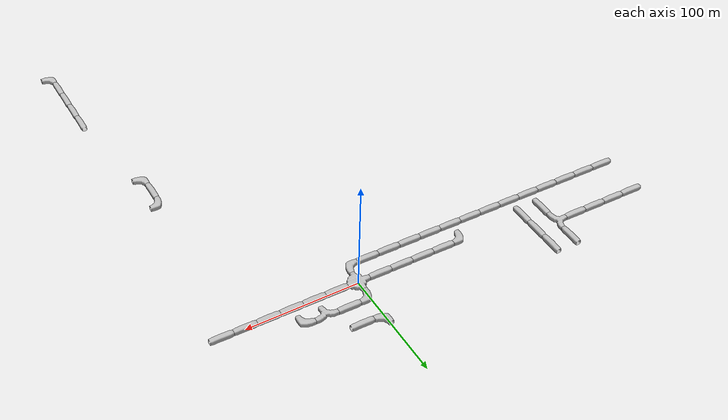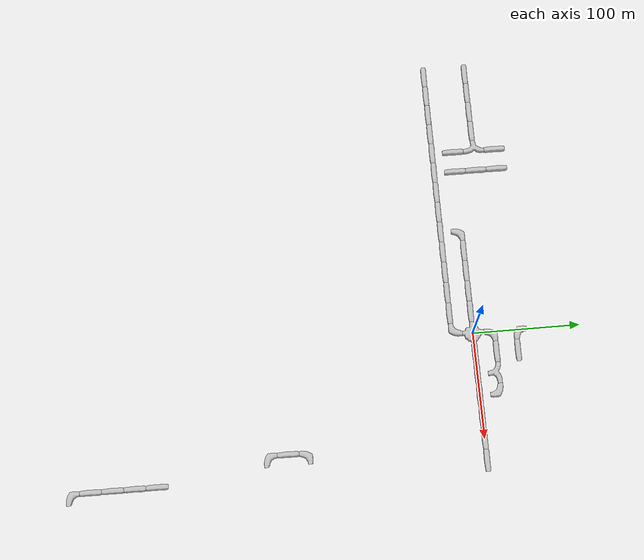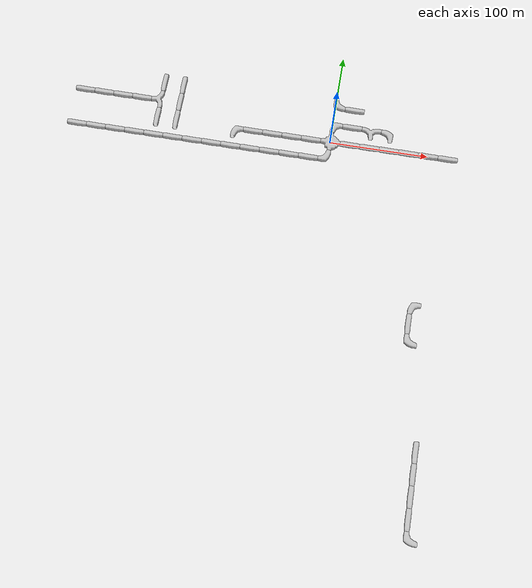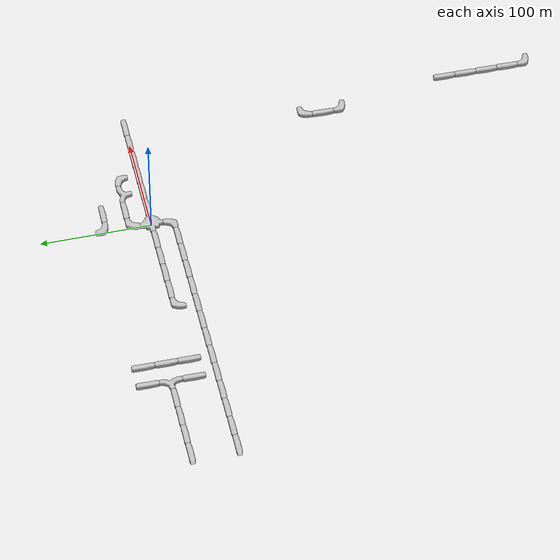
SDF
<sdf version="1.6">
 <world name="cave_8000_64">
  <include>
   <static>true</static>
   <name>cave_0_0</name>
   <pose>0 0 0 0 0 -1.5707963267948966</pose>
   <uri>model://cave_4way_20m</uri>
  </include>
  <include>
   <static>true</static>
   <name>cave_1_0</name>
   <pose>20 0 0 0 0 1.5707963267948966</pose>
   <uri>model://cave_straight_20m</uri>
  </include>
  <include>
   <static>true</static>
   <name>cave_2_0</name>
   <pose>40 0 0 0 0 1.5707963267948966</pose>
   <uri>model://cave_straight_20m</uri>
  </include>
  <include>
   <static>true</static>
   <name>cave_3_0</name>
   <pose>60 0 0 0 0 1.5707963267948966</pose>
   <uri>model://cave_straight_20m</uri>
  </include>
  <include>
   <static>true</static>
   <name>cave_4_0</name>
   <pose>80 0 0 0 0 1.5707963267948966</pose>
   <uri>model://cave_straight_20m</uri>
  </include>
  <include>
   <static>true</static>
   <name>cave_5_0</name>
   <pose>100 0 0 0 0 1.5707963267948966</pose>
   <uri>model://cave_straight_20m</uri>
  </include>
  <include>
   <static>true</static>
   <name>cave_6_0</name>
   <pose>120 0 0 0 0 1.5707963267948966</pose>
   <uri>model://cave_straight_20m</uri>
  </include>
  <include>
   <static>true</static>
   <name>cave_6_-19</name>
   <pose>120 -380 0 0 0 0.0</pose>
   <uri>model://cave_L_20m</uri>
  </include>
  <include>
   <static>true</static>
   <name>cave_6_-18</name>
   <pose>120 -360 0 0 0 0.0</pose>
   <uri>model://cave_straight_20m</uri>
  </include>
  <include>
   <static>true</static>
   <name>cave_6_-17</name>
   <pose>120 -340 0 0 0 0.0</pose>
   <uri>model://cave_straight_20m</uri>
  </include>
  <include>
   <static>true</static>
   <name>cave_6_-16</name>
   <pose>120 -320 0 0 0 0.0</pose>
   <uri>model://cave_straight_20m</uri>
  </include>
  <include>
   <static>true</static>
   <name>cave_6_-15</name>
   <pose>120 -300 0 0 0 0.0</pose>
   <uri>model://cave_straight_20m</uri>
  </include>
  <include>
   <static>true</static>
   <name>cave_5_-8</name>
   <pose>100 -160 0 0 0 -1.5707963267948966</pose>
   <uri>model://cave_L_20m</uri>
  </include>
  <include>
   <static>true</static>
   <name>cave_5_-9</name>
   <pose>100 -180 0 0 0 0.0</pose>
   <uri>model://cave_straight_20m</uri>
  </include>
  <include>
   <static>true</static>
   <name>cave_5_-10</name>
   <pose>100 -200 0 0 0 0.0</pose>
   <uri>model://cave_L_20m</uri>
  </include>
  <include>
   <static>true</static>
   <name>cave_0_-1</name>
   <pose>0 -20 0 0 0 1.5707963267948966</pose>
   <uri>model://cave_L_20m</uri>
  </include>
  <include>
   <static>true</static>
   <name>cave_-1_-1</name>
   <pose>-20 -20 0 0 0 1.5707963267948966</pose>
   <uri>model://cave_straight_20m</uri>
  </include>
  <include>
   <static>true</static>
   <name>cave_-2_-1</name>
   <pose>-40 -20 0 0 0 1.5707963267948966</pose>
   <uri>model://cave_straight_20m</uri>
  </include>
  <include>
   <static>true</static>
   <name>cave_-3_-1</name>
   <pose>-60 -20 0 0 0 1.5707963267948966</pose>
   <uri>model://cave_straight_20m</uri>
  </include>
  <include>
   <static>true</static>
   <name>cave_-4_-1</name>
   <pose>-80 -20 0 0 0 1.5707963267948966</pose>
   <uri>model://cave_straight_20m</uri>
  </include>
  <include>
   <static>true</static>
   <name>cave_-5_-1</name>
   <pose>-100 -20 0 0 0 1.5707963267948966</pose>
   <uri>model://cave_straight_20m</uri>
  </include>
  <include>
   <static>true</static>
   <name>cave_-6_-1</name>
   <pose>-120 -20 0 0 0 1.5707963267948966</pose>
   <uri>model://cave_straight_20m</uri>
  </include>
  <include>
   <static>true</static>
   <name>cave_-7_-1</name>
   <pose>-140 -20 0 0 0 1.5707963267948966</pose>
   <uri>model://cave_straight_20m</uri>
  </include>
  <include>
   <static>true</static>
   <name>cave_-8_-1</name>
   <pose>-160 -20 0 0 0 1.5707963267948966</pose>
   <uri>model://cave_straight_20m</uri>
  </include>
  <include>
   <static>true</static>
   <name>cave_-9_-1</name>
   <pose>-180 -20 0 0 0 1.5707963267948966</pose>
   <uri>model://cave_straight_20m</uri>
  </include>
  <include>
   <static>true</static>
   <name>cave_-10_-1</name>
   <pose>-200 -20 0 0 0 1.5707963267948966</pose>
   <uri>model://cave_straight_20m</uri>
  </include>
  <include>
   <static>true</static>
   <name>cave_-11_-1</name>
   <pose>-220 -20 0 0 0 1.5707963267948966</pose>
   <uri>model://cave_straight_20m</uri>
  </include>
  <include>
   <static>true</static>
   <name>cave_-12_-1</name>
   <pose>-240 -20 0 0 0 1.5707963267948966</pose>
   <uri>model://cave_straight_20m</uri>
  </include>
  <include>
   <static>true</static>
   <name>cave_-13_-1</name>
   <pose>-260 -20 0 0 0 1.5707963267948966</pose>
   <uri>model://cave_straight_20m</uri>
  </include>
  <include>
   <static>true</static>
   <name>cave_-13_1</name>
   <pose>-260 20 0 0 0 1.5707963267948966</pose>
   <uri>model://cave_straight_20m</uri>
  </include>
  <include>
   <static>true</static>
   <name>cave_-12_1</name>
   <pose>-240 20 0 0 0 1.5707963267948966</pose>
   <uri>model://cave_straight_20m</uri>
  </include>
  <include>
   <static>true</static>
   <name>cave_-11_1</name>
   <pose>-220 20 0 0 0 1.5707963267948966</pose>
   <uri>model://cave_straight_20m</uri>
  </include>
  <include>
   <static>true</static>
   <name>cave_-10_1</name>
   <pose>-200 20 0 0 0 1.5707963267948966</pose>
   <uri>model://cave_straight_20m</uri>
  </include>
  <include>
   <static>true</static>
   <name>cave_-9_1</name>
   <pose>-180 20 0 0 0 1.5707963267948966</pose>
   <uri>model://cave_3way_20m</uri>
  </include>
  <include>
   <static>true</static>
   <name>cave_-9_0</name>
   <pose>-180 0 0 0 0 0.0</pose>
   <uri>model://cave_straight_20m</uri>
  </include>
  <include>
   <static>true</static>
   <name>cave_-9_2</name>
   <pose>-180 40 0 0 0 0.0</pose>
   <uri>model://cave_straight_20m</uri>
  </include>
  <include>
   <static>true</static>
   <name>cave_-8_2</name>
   <pose>-160 40 0 0 0 0.0</pose>
   <uri>model://cave_straight_20m</uri>
  </include>
  <include>
   <static>true</static>
   <name>cave_-8_1</name>
   <pose>-160 20 0 0 0 0.0</pose>
   <uri>model://cave_straight_20m</uri>
  </include>
  <include>
   <static>true</static>
   <name>cave_-8_0</name>
   <pose>-160 0 0 0 0 0.0</pose>
   <uri>model://cave_straight_20m</uri>
  </include>
  <include>
   <static>true</static>
   <name>cave_1_2</name>
   <pose>20 40 0 0 0 1.5707963267948966</pose>
   <uri>model://cave_straight_20m</uri>
  </include>
  <include>
   <static>true</static>
   <name>cave_0_2</name>
   <pose>0 40 0 0 0 0.0</pose>
   <uri>model://cave_L_20m</uri>
  </include>
  <include>
   <static>true</static>
   <name>cave_-1_0</name>
   <pose>-20 0 0 0 0 1.5707963267948966</pose>
   <uri>model://cave_straight_20m</uri>
  </include>
  <include>
   <static>true</static>
   <name>cave_-2_0</name>
   <pose>-40 0 0 0 0 1.5707963267948966</pose>
   <uri>model://cave_straight_20m</uri>
  </include>
  <include>
   <static>true</static>
   <name>cave_-3_0</name>
   <pose>-60 0 0 0 0 1.5707963267948966</pose>
   <uri>model://cave_straight_20m</uri>
  </include>
  <include>
   <static>true</static>
   <name>cave_-4_0</name>
   <pose>-80 0 0 0 0 1.5707963267948966</pose>
   <uri>model://cave_straight_20m</uri>
  </include>
  <include>
   <static>true</static>
   <name>cave_-5_0</name>
   <pose>-100 0 0 0 0 -1.5707963267948966</pose>
   <uri>model://cave_L_20m</uri>
  </include>
  <include>
   <static>true</static>
   <name>cave_0_1</name>
   <pose>0 20 0 0 0 -1.5707963267948966</pose>
   <uri>model://cave_L_20m</uri>
  </include>
  <include>
   <static>true</static>
   <name>cave_1_1</name>
   <pose>20 20 0 0 0 1.5707963267948966</pose>
   <uri>model://cave_straight_20m</uri>
  </include>
  <include>
   <static>true</static>
   <name>cave_2_1</name>
   <pose>40 20 0 0 0 3.141592653589793</pose>
   <uri>model://cave_3way_20m</uri>
  </include>
  <include>
   <static>true</static>
   <name>cave_3_1</name>
   <pose>60 20 0 0 0 3.141592653589793</pose>
   <uri>model://cave_L_20m</uri>
  </include>
 </world>
</sdf>
